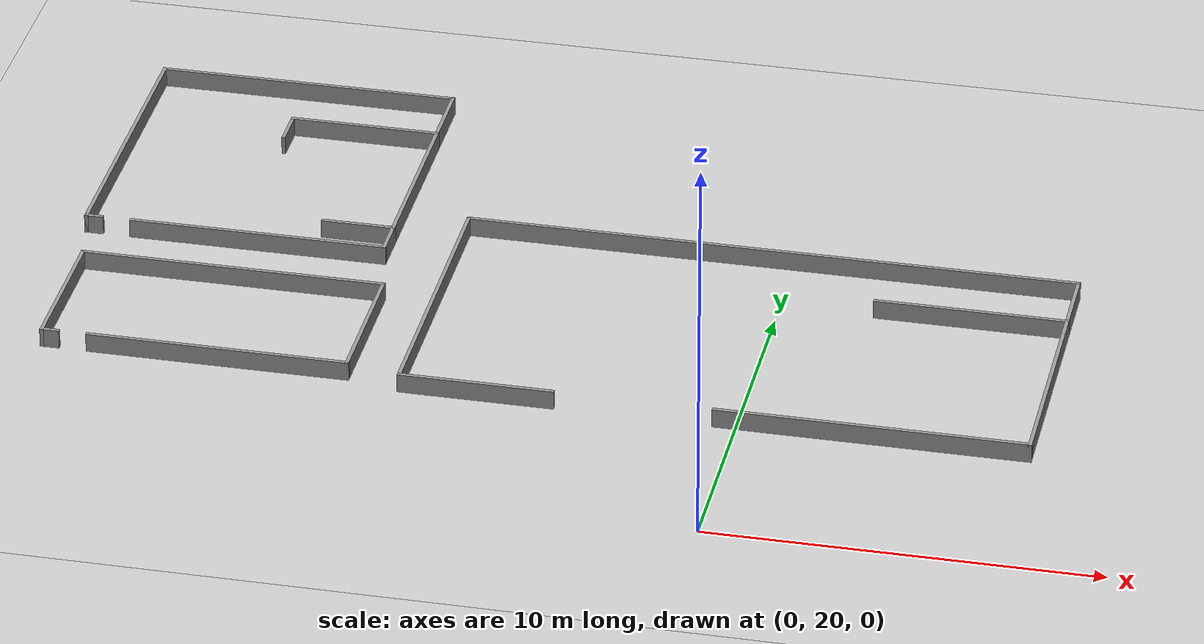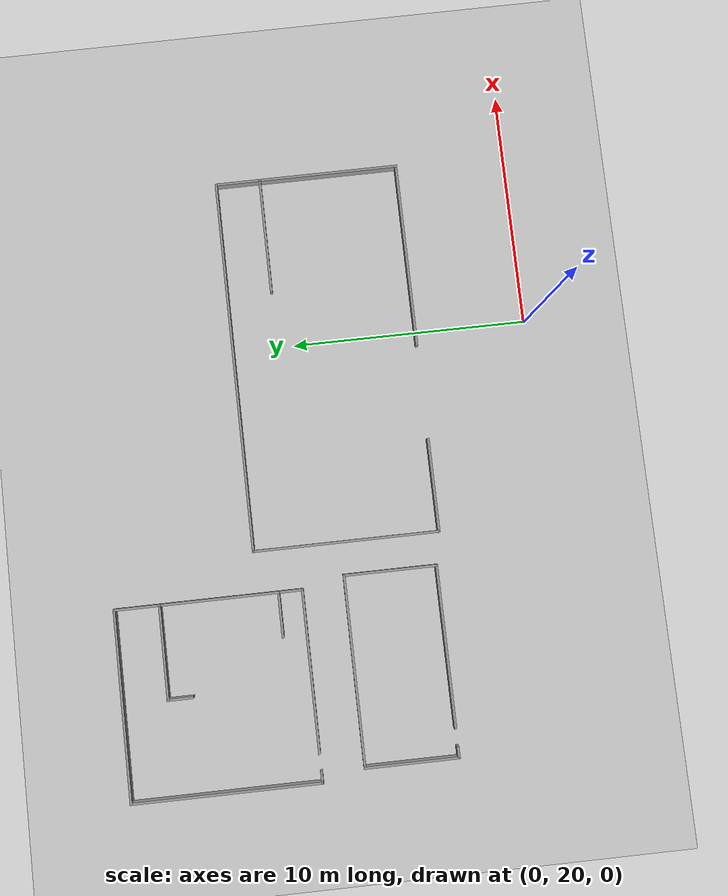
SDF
<sdf version="1.6">
 <world name="default">
  <model name="ground_plane">
   <static>1</static>
   <link name="link">
    <collision name="collision">
     <geometry><plane><normal>0 0 1</normal><size>80 80</size></plane></geometry>
     <surface>
      <contact><collide_bitmask>65535</collide_bitmask></contact>
      <friction><ode><mu>100</mu><mu2>50</mu2></ode></friction>
     </surface>
     <max_contacts>15</max_contacts>
    </collision>
    <visual name="visual">
     <cast_shadows>0</cast_shadows>
     <geometry><plane><normal>0 0 1</normal><size>80 80</size></plane></geometry>
     <material>
      <script><uri>file://media/materials/scripts/gazebo.material</uri><name>Gazebo/Grey</name></script>
     </material>
    </visual>
   </link>
  </model>
  <model name="shape2">
   <pose>-0.599998 28.7 0 0 -0 0</pose>
   <link name="Wall_0">
    <collision name="Wall_0_Collision">
     <geometry><box><size>7.94986 0.1 0.5</size></box></geometry>
     <pose>0 0 0.25 0 -0 0</pose>
    </collision>
    <visual name="Wall_0_Visual">
     <pose>0 0 0.25 0 -0 0</pose>
     <geometry><box><size>7.94986 0.1 0.5</size></box></geometry>
     <material>
      <script><uri>file://media/materials/scripts/gazebo.material</uri><name>Gazebo/Grey</name></script>
      <ambient>1 1 1 1</ambient>
     </material>
     <meta><layer>0</layer></meta>
    </visual>
    <pose>-7.95004 0 0 0 -0 -1.5708</pose>
   </link>
   <link name="Wall_1">
    <collision name="Wall_1_Collision">
     <geometry><box><size>4 0.1 0.5</size></box></geometry>
     <pose>0 0 0.25 0 -0 0</pose>
    </collision>
    <visual name="Wall_1_Visual">
     <pose>0 0 0.25 0 -0 0</pose>
     <geometry><box><size>4 0.1 0.5</size></box></geometry>
     <material>
      <script><uri>file://media/materials/scripts/gazebo.material</uri><name>Gazebo/Grey</name></script>
      <ambient>1 1 1 1</ambient>
     </material>
     <meta><layer>0</layer></meta>
    </visual>
    <pose>-6.00004 -3.925 0 0 -0 0</pose>
   </link>
   <link name="Wall_3">
    <collision name="Wall_3_Collision">
     <geometry><box><size>16 0.1 0.5</size></box></geometry>
     <pose>0 0 0.25 0 -0 0</pose>
    </collision>
    <visual name="Wall_3_Visual">
     <pose>0 0 0.25 0 -0 0</pose>
     <geometry><box><size>16 0.1 0.5</size></box></geometry>
     <material>
      <script><uri>file://media/materials/scripts/gazebo.material</uri><name>Gazebo/Grey</name></script>
      <ambient>1 1 1 1</ambient>
     </material>
     <meta><layer>0</layer></meta>
    </visual>
    <pose>-4e-05 3.925 0 0 -0 0</pose>
   </link>
   <link name="Wall_4">
    <collision name="Wall_4_Collision">
     <geometry><box><size>2 0.1 0.5</size></box></geometry>
     <pose>0 0 0.25 0 -0 0</pose>
    </collision>
    <visual name="Wall_4_Visual">
     <pose>0 0 0.25 0 -0 0</pose>
     <geometry><box><size>2 0.1 0.5</size></box></geometry>
     <material>
      <script><uri>file://media/materials/scripts/gazebo.material</uri><name>Gazebo/Grey</name></script>
      <ambient>1 1 1 1</ambient>
     </material>
     <meta><layer>0</layer></meta>
    </visual>
    <pose>7.94996 2.975 0 0 -0 -1.5708</pose>
   </link>
   <link name="Wall_5">
    <collision name="Wall_5_Collision">
     <geometry><box><size>5 0.1 0.5</size></box></geometry>
     <pose>0 0 0.25 0 -0 0</pose>
    </collision>
    <visual name="Wall_5_Visual">
     <pose>0 0 0.25 0 -0 0</pose>
     <geometry><box><size>5 0.1 0.5</size></box></geometry>
     <material>
      <script><uri>file://media/materials/scripts/gazebo.material</uri><name>Gazebo/Grey</name></script>
      <ambient>1 1 1 1</ambient>
     </material>
     <meta><layer>0</layer></meta>
    </visual>
    <pose>5.49996 2.025 0 0 -0 3.14159</pose>
   </link>
   <link name="Wall_7">
    <collision name="Wall_7_Collision">
     <geometry><box><size>6.05 0.1 0.5</size></box></geometry>
     <pose>0 0 0.25 0 -0 0</pose>
    </collision>
    <visual name="Wall_7_Visual">
     <pose>0 0 0.25 0 -0 0</pose>
     <geometry><box><size>6.05 0.1 0.5</size></box></geometry>
     <material>
      <script><uri>file://media/materials/scripts/gazebo.material</uri><name>Gazebo/Grey</name></script>
      <ambient>1 1 1 1</ambient>
     </material>
     <meta><layer>0</layer></meta>
    </visual>
    <pose>7.94996 -0.95 0 0 -0 -1.5708</pose>
   </link>
   <link name="Wall_8">
    <collision name="Wall_8_Collision">
     <geometry><box><size>8.00016 0.1 0.5</size></box></geometry>
     <pose>0 0 0.25 0 -0 0</pose>
    </collision>
    <visual name="Wall_8_Visual">
     <pose>0 0 0.25 0 -0 0</pose>
     <geometry><box><size>8.00016 0.1 0.5</size></box></geometry>
     <material>
      <script><uri>file://media/materials/scripts/gazebo.material</uri><name>Gazebo/Grey</name></script>
      <ambient>1 1 1 1</ambient>
     </material>
     <meta><layer>0</layer></meta>
    </visual>
    <pose>3.99996 -3.925 0 0 -0 3.14159</pose>
   </link>
   <static>1</static>
  </model>
  <model name="shape3">
   <pose>-13.9 27 0 0 -0 0</pose>
   <link name="Wall_11">
    <collision name="Wall_11_Collision">
     <geometry><box><size>4 0.1 0.5</size></box></geometry>
     <pose>0 0 0.25 0 -0 0</pose>
    </collision>
    <visual name="Wall_11_Visual">
     <pose>0 0 0.25 0 -0 0</pose>
     <geometry><box><size>4 0.1 0.5</size></box></geometry>
     <material>
      <script><uri>file://media/materials/scripts/gazebo.material</uri><name>Gazebo/Grey</name></script>
      <ambient>1 1 1 1</ambient>
     </material>
     <meta><layer>0</layer></meta>
    </visual>
    <pose>-3.95 0 0 0 -0 -1.5708</pose>
   </link>
   <link name="Wall_12">
    <collision name="Wall_12_Collision">
     <geometry><box><size>0.5 0.1 0.5</size></box></geometry>
     <pose>0 0 0.25 0 -0 0</pose>
    </collision>
    <visual name="Wall_12_Visual">
     <pose>0 0 0.25 0 -0 0</pose>
     <geometry><box><size>0.5 0.1 0.5</size></box></geometry>
     <material>
      <script><uri>file://media/materials/scripts/gazebo.material</uri><name>Gazebo/Grey</name></script>
      <ambient>1 1 1 1</ambient>
     </material>
     <meta><layer>0</layer></meta>
    </visual>
    <pose>-3.75 -1.95 0 0 -0 0</pose>
   </link>
   <link name="Wall_7">
    <collision name="Wall_7_Collision">
     <geometry><box><size>8 0.1 0.5</size></box></geometry>
     <pose>0 0 0.25 0 -0 0</pose>
    </collision>
    <visual name="Wall_7_Visual">
     <pose>0 0 0.25 0 -0 0</pose>
     <geometry><box><size>8 0.1 0.5</size></box></geometry>
     <material>
      <script><uri>file://media/materials/scripts/gazebo.material</uri><name>Gazebo/Grey</name></script>
      <ambient>1 1 1 1</ambient>
     </material>
     <meta><layer>0</layer></meta>
    </visual>
    <pose>-0 1.95 0 0 -0 0</pose>
   </link>
   <link name="Wall_8">
    <collision name="Wall_8_Collision">
     <geometry><box><size>4 0.1 0.5</size></box></geometry>
     <pose>0 0 0.25 0 -0 0</pose>
    </collision>
    <visual name="Wall_8_Visual">
     <pose>0 0 0.25 0 -0 0</pose>
     <geometry><box><size>4 0.1 0.5</size></box></geometry>
     <material>
      <script><uri>file://media/materials/scripts/gazebo.material</uri><name>Gazebo/Grey</name></script>
      <ambient>1 1 1 1</ambient>
     </material>
     <meta><layer>0</layer></meta>
    </visual>
    <pose>3.95 0 0 0 -0 -1.5708</pose>
   </link>
   <link name="Wall_9">
    <collision name="Wall_9_Collision">
     <geometry><box><size>6.8 0.1 0.5</size></box></geometry>
     <pose>0 0 0.25 0 -0 0</pose>
    </collision>
    <visual name="Wall_9_Visual">
     <pose>0 0 0.25 0 -0 0</pose>
     <geometry><box><size>6.8 0.1 0.5</size></box></geometry>
     <material>
      <script><uri>file://media/materials/scripts/gazebo.material</uri><name>Gazebo/Grey</name></script>
      <ambient>1 1 1 1</ambient>
     </material>
     <meta><layer>0</layer></meta>
    </visual>
    <pose>0.6 -1.95 0 0 -0 3.14159</pose>
   </link>
   <static>1</static>
  </model>
  <model name="shape6">
   <pose>-14.3 34.7 0 0 -0 0</pose>
   <link name="Wall_0">
    <collision name="Wall_0_Collision">
     <geometry><box><size>8 0.1 0.5</size></box></geometry>
     <pose>0 0 0.25 0 -0 0</pose>
    </collision>
    <visual name="Wall_0_Visual">
     <pose>0 0 0.25 0 -0 0</pose>
     <geometry><box><size>8 0.1 0.5</size></box></geometry>
     <material>
      <script><uri>file://media/materials/scripts/gazebo.material</uri><name>Gazebo/Grey</name></script>
      <ambient>1 1 1 1</ambient>
     </material>
     <meta><layer>0</layer></meta>
    </visual>
    <pose>-3.95 0 0 0 -0 -1.5708</pose>
   </link>
   <link name="Wall_1">
    <collision name="Wall_1_Collision">
     <geometry><box><size>0.5 0.1 0.5</size></box></geometry>
     <pose>0 0 0.25 0 -0 0</pose>
    </collision>
    <visual name="Wall_1_Visual">
     <pose>0 0 0.25 0 -0 0</pose>
     <geometry><box><size>0.5 0.1 0.5</size></box></geometry>
     <material>
      <script><uri>file://media/materials/scripts/gazebo.material</uri><name>Gazebo/Grey</name></script>
      <ambient>1 1 1 1</ambient>
     </material>
     <meta><layer>0</layer></meta>
    </visual>
    <pose>-3.75 -3.95 0 0 -0 0</pose>
   </link>
   <link name="Wall_10">
    <collision name="Wall_10_Collision">
     <geometry><box><size>1.95 0.1 0.5</size></box></geometry>
     <pose>0 0 0.25 0 -0 0</pose>
    </collision>
    <visual name="Wall_10_Visual">
     <pose>0 0 0.25 0 -0 0</pose>
     <geometry><box><size>1.95 0.1 0.5</size></box></geometry>
     <material>
      <script><uri>file://media/materials/scripts/gazebo.material</uri><name>Gazebo/Grey</name></script>
      <ambient>1 1 1 1</ambient>
     </material>
     <meta><layer>0</layer></meta>
    </visual>
    <pose>3.025 -2.95 0 0 -0 3.14159</pose>
   </link>
   <link name="Wall_12">
    <collision name="Wall_12_Collision">
     <geometry><box><size>1.1 0.1 0.5</size></box></geometry>
     <pose>0 0 0.25 0 -0 0</pose>
    </collision>
    <visual name="Wall_12_Visual">
     <pose>0 0 0.25 0 -0 0</pose>
     <geometry><box><size>1.1 0.1 0.5</size></box></geometry>
     <material>
      <script><uri>file://media/materials/scripts/gazebo.material</uri><name>Gazebo/Grey</name></script>
      <ambient>1 1 1 1</ambient>
     </material>
     <meta><layer>0</layer></meta>
    </visual>
    <pose>3.95 -3.45 0 0 -0 -1.5708</pose>
   </link>
   <link name="Wall_13">
    <collision name="Wall_13_Collision">
     <geometry><box><size>6.8 0.1 0.5</size></box></geometry>
     <pose>0 0 0.25 0 -0 0</pose>
    </collision>
    <visual name="Wall_13_Visual">
     <pose>0 0 0.25 0 -0 0</pose>
     <geometry><box><size>6.8 0.1 0.5</size></box></geometry>
     <material>
      <script><uri>file://media/materials/scripts/gazebo.material</uri><name>Gazebo/Grey</name></script>
      <ambient>1 1 1 1</ambient>
     </material>
     <meta><layer>0</layer></meta>
    </visual>
    <pose>0.6 -3.95 0 0 -0 3.14159</pose>
   </link>
   <link name="Wall_3">
    <collision name="Wall_3_Collision">
     <geometry><box><size>8 0.1 0.5</size></box></geometry>
     <pose>0 0 0.25 0 -0 0</pose>
    </collision>
    <visual name="Wall_3_Visual">
     <pose>0 0 0.25 0 -0 0</pose>
     <geometry><box><size>8 0.1 0.5</size></box></geometry>
     <material>
      <script><uri>file://media/materials/scripts/gazebo.material</uri><name>Gazebo/Grey</name></script>
      <ambient>1 1 1 1</ambient>
     </material>
     <meta><layer>0</layer></meta>
    </visual>
    <pose>-0 3.95 0 0 -0 0</pose>
   </link>
   <link name="Wall_4">
    <collision name="Wall_4_Collision">
     <geometry><box><size>2 0.1 0.5</size></box></geometry>
     <pose>0 0 0.25 0 -0 0</pose>
    </collision>
    <visual name="Wall_4_Visual">
     <pose>0 0 0.25 0 -0 0</pose>
     <geometry><box><size>2 0.1 0.5</size></box></geometry>
     <material>
      <script><uri>file://media/materials/scripts/gazebo.material</uri><name>Gazebo/Grey</name></script>
      <ambient>1 1 1 1</ambient>
     </material>
     <meta><layer>0</layer></meta>
    </visual>
    <pose>3.95 3 0 0 -0 -1.5708</pose>
   </link>
   <link name="Wall_5">
    <collision name="Wall_5_Collision">
     <geometry><box><size>5.1 0.1 0.5</size></box></geometry>
     <pose>0 0 0.25 0 -0 0</pose>
    </collision>
    <visual name="Wall_5_Visual">
     <pose>0 0 0.25 0 -0 0</pose>
     <geometry><box><size>5.1 0.1 0.5</size></box></geometry>
     <material>
      <script><uri>file://media/materials/scripts/gazebo.material</uri><name>Gazebo/Grey</name></script>
      <ambient>1 1 1 1</ambient>
     </material>
     <meta><layer>0</layer></meta>
    </visual>
    <pose>3.95 -0.45 0 0 -0 -1.5708</pose>
   </link>
   <link name="Wall_7">
    <collision name="Wall_7_Collision">
     <geometry><box><size>4 0.1 0.5</size></box></geometry>
     <pose>0 0 0.25 0 -0 0</pose>
    </collision>
    <visual name="Wall_7_Visual">
     <pose>0 0 0.25 0 -0 0</pose>
     <geometry><box><size>4 0.1 0.5</size></box></geometry>
     <material>
      <script><uri>file://media/materials/scripts/gazebo.material</uri><name>Gazebo/Grey</name></script>
      <ambient>1 1 1 1</ambient>
     </material>
     <meta><layer>0</layer></meta>
    </visual>
    <pose>2 2.05 0 0 -0 3.14159</pose>
   </link>
   <link name="Wall_8">
    <collision name="Wall_8_Collision">
     <geometry><box><size>1.1 0.1 0.5</size></box></geometry>
     <pose>0 0 0.25 0 -0 0</pose>
    </collision>
    <visual name="Wall_8_Visual">
     <pose>0 0 0.25 0 -0 0</pose>
     <geometry><box><size>1.1 0.1 0.5</size></box></geometry>
     <material>
      <script><uri>file://media/materials/scripts/gazebo.material</uri><name>Gazebo/Grey</name></script>
      <ambient>1 1 1 1</ambient>
     </material>
     <meta><layer>0</layer></meta>
    </visual>
    <pose>0.05 1.55 0 0 -0 -1.5708</pose>
   </link>
   <static>1</static>
  </model>
 </world>
</sdf>
